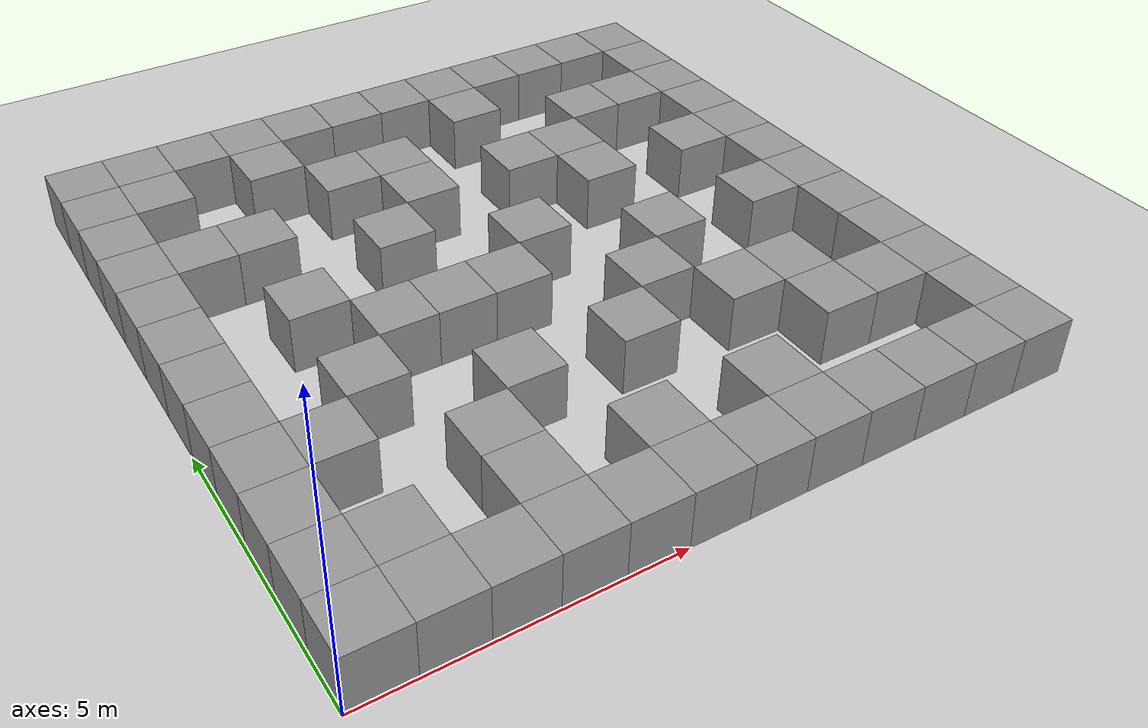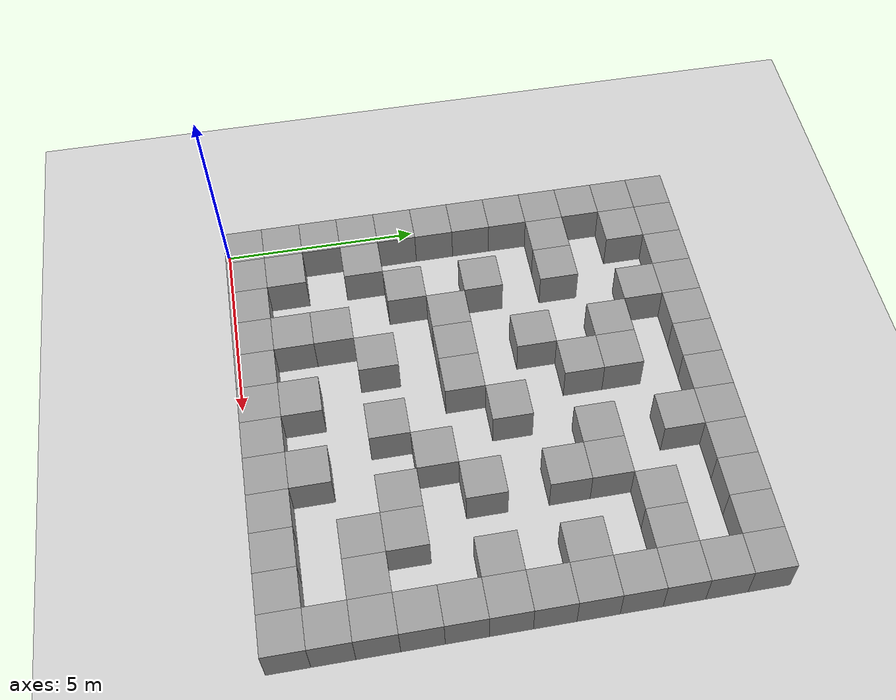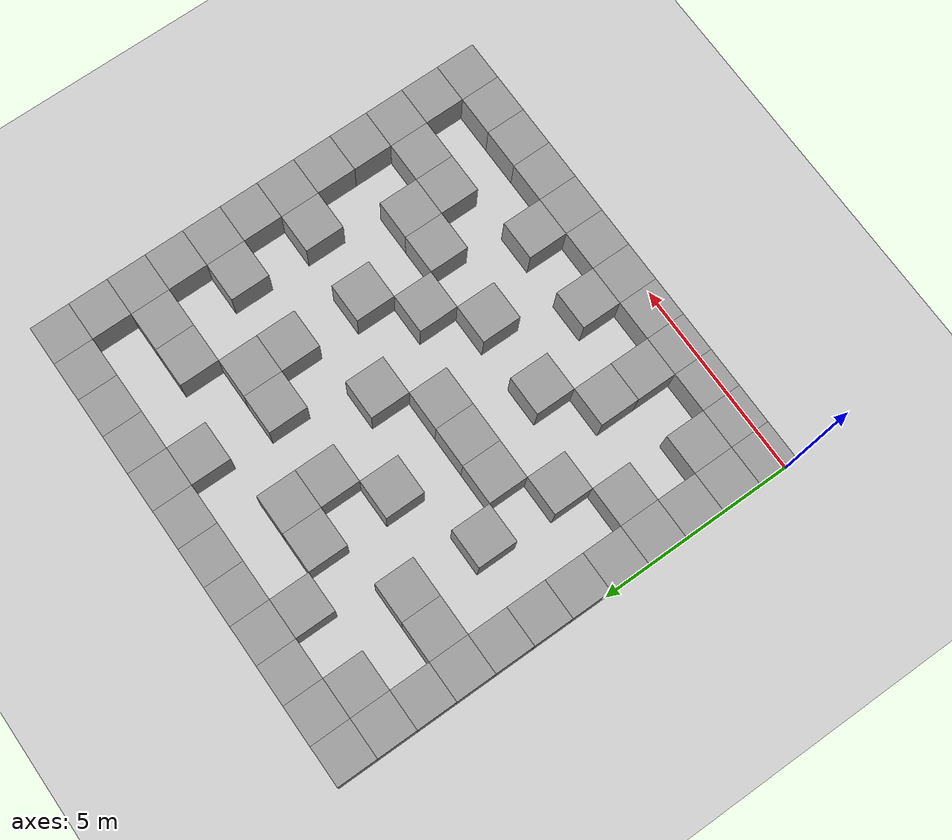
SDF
<sdf version="1.7">
 <world name="labyrinth">
  <light name="sun" type="directional">
   <pose>0 0 10 0 -0 0</pose>
   <diffuse>0.8 0.8 0.8 1</diffuse>
   <specular>0.2 0.2 0.2 1</specular>
   <attenuation>
    <range>1000</range>
    <constant>0.9</constant>
    <linear>0.01</linear>
    <quadratic>0.001</quadratic>
   </attenuation>
   <direction>-0.5 0.1 -0.9</direction>
   <spot><inner_angle>0</inner_angle><outer_angle>0</outer_angle><falloff>0</falloff></spot>
  </light>
  <model name="ground_plane">
   <static>1</static>
   <link name="link">
    <collision name="collision">
     <geometry><plane><normal>0 0 1</normal><size>200 200</size></plane></geometry>
     <surface>
      <contact><collide_bitmask>65535</collide_bitmask></contact>
      <friction><ode><mu>100</mu><mu2>50</mu2></ode></friction>
     </surface>
    </collision>
    <visual name="visual">
     <cast_shadows>0</cast_shadows>
     <geometry><plane><normal>0 0 1</normal><size>200 200</size></plane></geometry>
     <material>
      <script><uri>file://media/materials/scripts/gazebo.material</uri><name>Gazebo/Grey</name></script>
     </material>
    </visual>
   </link>
  </model>
  <gravity>0 0 -9.8</gravity>
  <magnetic_field>6e-06 2.3e-05 -4.2e-05</magnetic_field>
  <atmosphere type="adiabatic"/>
  <physics type="ode">
   <max_step_size>0.001</max_step_size>
   <real_time_factor>1</real_time_factor>
   <real_time_update_rate>1000</real_time_update_rate>
  </physics>
  <scene><ambient>0.4 0.4 0.4 1</ambient><background>0.7 0.7 0.7 1</background><shadows>1</shadows></scene>
  <spherical_coordinates>
   <surface_model>EARTH_WGS84</surface_model>
   <latitude_deg>0</latitude_deg>
   <longitude_deg>0</longitude_deg>
   <elevation>0</elevation>
   <heading_deg>0</heading_deg>
  </spherical_coordinates>
  <model name="unit_box_0">
   <static>1</static>
   <pose>0.5 0.5 0.5 0 -0 0</pose>
   <link name="link">
    <inertial>
     <mass>1</mass>
     <inertia>
      <ixx>0.166667</ixx>
      <ixy>0</ixy>
      <ixz>0</ixz>
      <iyy>0.166667</iyy>
      <iyz>0</iyz>
      <izz>0.166667</izz>
     </inertia>
    </inertial>
    <collision name="collision"><geometry><box><size>1 1 1</size></box></geometry></collision>
    <visual name="visual">
     <geometry><box><size>1 1 1</size></box></geometry>
     <material>
      <script><name>Gazebo/Grey</name><uri>file://media/materials/scripts/gazebo.material</uri></script>
     </material>
    </visual>
   </link>
  </model>
  <model name="unit_box_1">
   <static>1</static>
   <pose>1.5 0.5 0.5 0 -0 0</pose>
   <link name="link">
    <inertial>
     <mass>1</mass>
     <inertia>
      <ixx>0.166667</ixx>
      <ixy>0</ixy>
      <ixz>0</ixz>
      <iyy>0.166667</iyy>
      <iyz>0</iyz>
      <izz>0.166667</izz>
     </inertia>
    </inertial>
    <collision name="collision"><geometry><box><size>1 1 1</size></box></geometry></collision>
    <visual name="visual">
     <geometry><box><size>1 1 1</size></box></geometry>
     <material>
      <script><name>Gazebo/Grey</name><uri>file://media/materials/scripts/gazebo.material</uri></script>
     </material>
    </visual>
   </link>
  </model>
  <model name="unit_box_2">
   <static>1</static>
   <pose>2.5 0.5 0.5 0 -0 0</pose>
   <link name="link">
    <inertial>
     <mass>1</mass>
     <inertia>
      <ixx>0.166667</ixx>
      <ixy>0</ixy>
      <ixz>0</ixz>
      <iyy>0.166667</iyy>
      <iyz>0</iyz>
      <izz>0.166667</izz>
     </inertia>
    </inertial>
    <collision name="collision"><geometry><box><size>1 1 1</size></box></geometry></collision>
    <visual name="visual">
     <geometry><box><size>1 1 1</size></box></geometry>
     <material>
      <script><name>Gazebo/Grey</name><uri>file://media/materials/scripts/gazebo.material</uri></script>
     </material>
    </visual>
   </link>
  </model>
  <model name="unit_box_3">
   <static>1</static>
   <pose>3.5 0.5 0.5 0 -0 0</pose>
   <link name="link">
    <inertial>
     <mass>1</mass>
     <inertia>
      <ixx>0.166667</ixx>
      <ixy>0</ixy>
      <ixz>0</ixz>
      <iyy>0.166667</iyy>
      <iyz>0</iyz>
      <izz>0.166667</izz>
     </inertia>
    </inertial>
    <collision name="collision"><geometry><box><size>1 1 1</size></box></geometry></collision>
    <visual name="visual">
     <geometry><box><size>1 1 1</size></box></geometry>
     <material>
      <script><name>Gazebo/Grey</name><uri>file://media/materials/scripts/gazebo.material</uri></script>
     </material>
    </visual>
   </link>
  </model>
  <model name="unit_box_4">
   <static>1</static>
   <pose>4.5 0.5 0.5 0 -0 0</pose>
   <link name="link">
    <inertial>
     <mass>1</mass>
     <inertia>
      <ixx>0.166667</ixx>
      <ixy>0</ixy>
      <ixz>0</ixz>
      <iyy>0.166667</iyy>
      <iyz>0</iyz>
      <izz>0.166667</izz>
     </inertia>
    </inertial>
    <collision name="collision"><geometry><box><size>1 1 1</size></box></geometry></collision>
    <visual name="visual">
     <geometry><box><size>1 1 1</size></box></geometry>
     <material>
      <script><name>Gazebo/Grey</name><uri>file://media/materials/scripts/gazebo.material</uri></script>
     </material>
    </visual>
   </link>
  </model>
  <model name="unit_box_5">
   <static>1</static>
   <pose>5.5 0.5 0.5 0 -0 0</pose>
   <link name="link">
    <inertial>
     <mass>1</mass>
     <inertia>
      <ixx>0.166667</ixx>
      <ixy>0</ixy>
      <ixz>0</ixz>
      <iyy>0.166667</iyy>
      <iyz>0</iyz>
      <izz>0.166667</izz>
     </inertia>
    </inertial>
    <collision name="collision"><geometry><box><size>1 1 1</size></box></geometry></collision>
    <visual name="visual">
     <geometry><box><size>1 1 1</size></box></geometry>
     <material>
      <script><name>Gazebo/Grey</name><uri>file://media/materials/scripts/gazebo.material</uri></script>
     </material>
    </visual>
   </link>
  </model>
  <model name="unit_box_6">
   <static>1</static>
   <pose>6.5 0.5 0.5 0 -0 0</pose>
   <link name="link">
    <inertial>
     <mass>1</mass>
     <inertia>
      <ixx>0.166667</ixx>
      <ixy>0</ixy>
      <ixz>0</ixz>
      <iyy>0.166667</iyy>
      <iyz>0</iyz>
      <izz>0.166667</izz>
     </inertia>
    </inertial>
    <collision name="collision"><geometry><box><size>1 1 1</size></box></geometry></collision>
    <visual name="visual">
     <geometry><box><size>1 1 1</size></box></geometry>
     <material>
      <script><name>Gazebo/Grey</name><uri>file://media/materials/scripts/gazebo.material</uri></script>
     </material>
    </visual>
   </link>
  </model>
  <model name="unit_box_7">
   <static>1</static>
   <pose>7.5 0.5 0.5 0 -0 0</pose>
   <link name="link">
    <inertial>
     <mass>1</mass>
     <inertia>
      <ixx>0.166667</ixx>
      <ixy>0</ixy>
      <ixz>0</ixz>
      <iyy>0.166667</iyy>
      <iyz>0</iyz>
      <izz>0.166667</izz>
     </inertia>
    </inertial>
    <collision name="collision"><geometry><box><size>1 1 1</size></box></geometry></collision>
    <visual name="visual">
     <geometry><box><size>1 1 1</size></box></geometry>
     <material>
      <script><name>Gazebo/Grey</name><uri>file://media/materials/scripts/gazebo.material</uri></script>
     </material>
    </visual>
   </link>
  </model>
  <model name="unit_box_8">
   <static>1</static>
   <pose>8.5 0.5 0.5 0 -0 0</pose>
   <link name="link">
    <inertial>
     <mass>1</mass>
     <inertia>
      <ixx>0.166667</ixx>
      <ixy>0</ixy>
      <ixz>0</ixz>
      <iyy>0.166667</iyy>
      <iyz>0</iyz>
      <izz>0.166667</izz>
     </inertia>
    </inertial>
    <collision name="collision"><geometry><box><size>1 1 1</size></box></geometry></collision>
    <visual name="visual">
     <geometry><box><size>1 1 1</size></box></geometry>
     <material>
      <script><name>Gazebo/Grey</name><uri>file://media/materials/scripts/gazebo.material</uri></script>
     </material>
    </visual>
   </link>
  </model>
  <model name="unit_box_9">
   <static>1</static>
   <pose>9.5 0.5 0.5 0 -0 0</pose>
   <link name="link">
    <inertial>
     <mass>1</mass>
     <inertia>
      <ixx>0.166667</ixx>
      <ixy>0</ixy>
      <ixz>0</ixz>
      <iyy>0.166667</iyy>
      <iyz>0</iyz>
      <izz>0.166667</izz>
     </inertia>
    </inertial>
    <collision name="collision"><geometry><box><size>1 1 1</size></box></geometry></collision>
    <visual name="visual">
     <geometry><box><size>1 1 1</size></box></geometry>
     <material>
      <script><name>Gazebo/Grey</name><uri>file://media/materials/scripts/gazebo.material</uri></script>
     </material>
    </visual>
   </link>
  </model>
  <model name="unit_box_10">
   <static>1</static>
   <pose>10.5 0.5 0.5 0 -0 0</pose>
   <link name="link">
    <inertial>
     <mass>1</mass>
     <inertia>
      <ixx>0.166667</ixx>
      <ixy>0</ixy>
      <ixz>0</ixz>
      <iyy>0.166667</iyy>
      <iyz>0</iyz>
      <izz>0.166667</izz>
     </inertia>
    </inertial>
    <collision name="collision"><geometry><box><size>1 1 1</size></box></geometry></collision>
    <visual name="visual">
     <geometry><box><size>1 1 1</size></box></geometry>
     <material>
      <script><name>Gazebo/Grey</name><uri>file://media/materials/scripts/gazebo.material</uri></script>
     </material>
    </visual>
   </link>
  </model>
  <model name="unit_box_11">
   <static>1</static>
   <pose>11.5 0.5 0.5 0 -0 0</pose>
   <link name="link">
    <inertial>
     <mass>1</mass>
     <inertia>
      <ixx>0.166667</ixx>
      <ixy>0</ixy>
      <ixz>0</ixz>
      <iyy>0.166667</iyy>
      <iyz>0</iyz>
      <izz>0.166667</izz>
     </inertia>
    </inertial>
    <collision name="collision"><geometry><box><size>1 1 1</size></box></geometry></collision>
    <visual name="visual">
     <geometry><box><size>1 1 1</size></box></geometry>
     <material>
      <script><name>Gazebo/Grey</name><uri>file://media/materials/scripts/gazebo.material</uri></script>
     </material>
    </visual>
   </link>
  </model>
  <model name="unit_box_12">
   <static>1</static>
   <pose>0.5 1.5 0.5 0 -0 0</pose>
   <link name="link">
    <inertial>
     <mass>1</mass>
     <inertia>
      <ixx>0.166667</ixx>
      <ixy>0</ixy>
      <ixz>0</ixz>
      <iyy>0.166667</iyy>
      <iyz>0</iyz>
      <izz>0.166667</izz>
     </inertia>
    </inertial>
    <collision name="collision"><geometry><box><size>1 1 1</size></box></geometry></collision>
    <visual name="visual">
     <geometry><box><size>1 1 1</size></box></geometry>
     <material>
      <script><name>Gazebo/Grey</name><uri>file://media/materials/scripts/gazebo.material</uri></script>
     </material>
    </visual>
   </link>
  </model>
  <model name="unit_box_13">
   <static>1</static>
   <pose>1.5 1.5 0.5 0 -0 0</pose>
   <link name="link">
    <inertial>
     <mass>1</mass>
     <inertia>
      <ixx>0.166667</ixx>
      <ixy>0</ixy>
      <ixz>0</ixz>
      <iyy>0.166667</iyy>
      <iyz>0</iyz>
      <izz>0.166667</izz>
     </inertia>
    </inertial>
    <collision name="collision"><geometry><box><size>1 1 1</size></box></geometry></collision>
    <visual name="visual">
     <geometry><box><size>1 1 1</size></box></geometry>
     <material>
      <script><name>Gazebo/Grey</name><uri>file://media/materials/scripts/gazebo.material</uri></script>
     </material>
    </visual>
   </link>
  </model>
  <model name="unit_box_14">
   <static>1</static>
   <pose>3.5 1.5 0.5 0 -0 0</pose>
   <link name="link">
    <inertial>
     <mass>1</mass>
     <inertia>
      <ixx>0.166667</ixx>
      <ixy>0</ixy>
      <ixz>0</ixz>
      <iyy>0.166667</iyy>
      <iyz>0</iyz>
      <izz>0.166667</izz>
     </inertia>
    </inertial>
    <collision name="collision"><geometry><box><size>1 1 1</size></box></geometry></collision>
    <visual name="visual">
     <geometry><box><size>1 1 1</size></box></geometry>
     <material>
      <script><name>Gazebo/Grey</name><uri>file://media/materials/scripts/gazebo.material</uri></script>
     </material>
    </visual>
   </link>
  </model>
  <model name="unit_box_15">
   <static>1</static>
   <pose>5.5 1.5 0.5 0 -0 0</pose>
   <link name="link">
    <inertial>
     <mass>1</mass>
     <inertia>
      <ixx>0.166667</ixx>
      <ixy>0</ixy>
      <ixz>0</ixz>
      <iyy>0.166667</iyy>
      <iyz>0</iyz>
      <izz>0.166667</izz>
     </inertia>
    </inertial>
    <collision name="collision"><geometry><box><size>1 1 1</size></box></geometry></collision>
    <visual name="visual">
     <geometry><box><size>1 1 1</size></box></geometry>
     <material>
      <script><name>Gazebo/Grey</name><uri>file://media/materials/scripts/gazebo.material</uri></script>
     </material>
    </visual>
   </link>
  </model>
  <model name="unit_box_16">
   <static>1</static>
   <pose>7.5 1.5 0.5 0 -0 0</pose>
   <link name="link">
    <inertial>
     <mass>1</mass>
     <inertia>
      <ixx>0.166667</ixx>
      <ixy>0</ixy>
      <ixz>0</ixz>
      <iyy>0.166667</iyy>
      <iyz>0</iyz>
      <izz>0.166667</izz>
     </inertia>
    </inertial>
    <collision name="collision"><geometry><box><size>1 1 1</size></box></geometry></collision>
    <visual name="visual">
     <geometry><box><size>1 1 1</size></box></geometry>
     <material>
      <script><name>Gazebo/Grey</name><uri>file://media/materials/scripts/gazebo.material</uri></script>
     </material>
    </visual>
   </link>
  </model>
  <model name="unit_box_17">
   <static>1</static>
   <pose>11.5 1.5 0.5 0 -0 0</pose>
   <link name="link">
    <inertial>
     <mass>1</mass>
     <inertia>
      <ixx>0.166667</ixx>
      <ixy>0</ixy>
      <ixz>0</ixz>
      <iyy>0.166667</iyy>
      <iyz>0</iyz>
      <izz>0.166667</izz>
     </inertia>
    </inertial>
    <collision name="collision"><geometry><box><size>1 1 1</size></box></geometry></collision>
    <visual name="visual">
     <geometry><box><size>1 1 1</size></box></geometry>
     <material>
      <script><name>Gazebo/Grey</name><uri>file://media/materials/scripts/gazebo.material</uri></script>
     </material>
    </visual>
   </link>
  </model>
  <model name="unit_box_18">
   <static>1</static>
   <pose>0.5 2.5 0.5 0 -0 0</pose>
   <link name="link">
    <inertial>
     <mass>1</mass>
     <inertia>
      <ixx>0.166667</ixx>
      <ixy>0</ixy>
      <ixz>0</ixz>
      <iyy>0.166667</iyy>
      <iyz>0</iyz>
      <izz>0.166667</izz>
     </inertia>
    </inertial>
    <collision name="collision"><geometry><box><size>1 1 1</size></box></geometry></collision>
    <visual name="visual">
     <geometry><box><size>1 1 1</size></box></geometry>
     <material>
      <script><name>Gazebo/Grey</name><uri>file://media/materials/scripts/gazebo.material</uri></script>
     </material>
    </visual>
   </link>
  </model>
  <model name="unit_box_19">
   <static>1</static>
   <pose>3.5 2.5 0.5 0 -0 0</pose>
   <link name="link">
    <inertial>
     <mass>1</mass>
     <inertia>
      <ixx>0.166667</ixx>
      <ixy>0</ixy>
      <ixz>0</ixz>
      <iyy>0.166667</iyy>
      <iyz>0</iyz>
      <izz>0.166667</izz>
     </inertia>
    </inertial>
    <collision name="collision"><geometry><box><size>1 1 1</size></box></geometry></collision>
    <visual name="visual">
     <geometry><box><size>1 1 1</size></box></geometry>
     <material>
      <script><name>Gazebo/Grey</name><uri>file://media/materials/scripts/gazebo.material</uri></script>
     </material>
    </visual>
   </link>
  </model>
  <model name="unit_box_20">
   <static>1</static>
   <pose>9.5 2.5 0.5 0 -0 0</pose>
   <link name="link">
    <inertial>
     <mass>1</mass>
     <inertia>
      <ixx>0.166667</ixx>
      <ixy>0</ixy>
      <ixz>0</ixz>
      <iyy>0.166667</iyy>
      <iyz>0</iyz>
      <izz>0.166667</izz>
     </inertia>
    </inertial>
    <collision name="collision"><geometry><box><size>1 1 1</size></box></geometry></collision>
    <visual name="visual">
     <geometry><box><size>1 1 1</size></box></geometry>
     <material>
      <script><name>Gazebo/Grey</name><uri>file://media/materials/scripts/gazebo.material</uri></script>
     </material>
    </visual>
   </link>
  </model>
  <model name="unit_box_21">
   <static>1</static>
   <pose>10.5 2.5 0.5 0 -0 0</pose>
   <link name="link">
    <inertial>
     <mass>1</mass>
     <inertia>
      <ixx>0.166667</ixx>
      <ixy>0</ixy>
      <ixz>0</ixz>
      <iyy>0.166667</iyy>
      <iyz>0</iyz>
      <izz>0.166667</izz>
     </inertia>
    </inertial>
    <collision name="collision"><geometry><box><size>1 1 1</size></box></geometry></collision>
    <visual name="visual">
     <geometry><box><size>1 1 1</size></box></geometry>
     <material>
      <script><name>Gazebo/Grey</name><uri>file://media/materials/scripts/gazebo.material</uri></script>
     </material>
    </visual>
   </link>
  </model>
  <model name="unit_box_22">
   <static>1</static>
   <pose>11.5 2.5 0.5 0 -0 0</pose>
   <link name="link">
    <inertial>
     <mass>1</mass>
     <inertia>
      <ixx>0.166667</ixx>
      <ixy>0</ixy>
      <ixz>0</ixz>
      <iyy>0.166667</iyy>
      <iyz>0</iyz>
      <izz>0.166667</izz>
     </inertia>
    </inertial>
    <collision name="collision"><geometry><box><size>1 1 1</size></box></geometry></collision>
    <visual name="visual">
     <geometry><box><size>1 1 1</size></box></geometry>
     <material>
      <script><name>Gazebo/Grey</name><uri>file://media/materials/scripts/gazebo.material</uri></script>
     </material>
    </visual>
   </link>
  </model>
  <model name="unit_box_23">
   <static>1</static>
   <pose>0.5 3.5 0.5 0 -0 0</pose>
   <link name="link">
    <inertial>
     <mass>1</mass>
     <inertia>
      <ixx>0.166667</ixx>
      <ixy>0</ixy>
      <ixz>0</ixz>
      <iyy>0.166667</iyy>
      <iyz>0</iyz>
      <izz>0.166667</izz>
     </inertia>
    </inertial>
    <collision name="collision"><geometry><box><size>1 1 1</size></box></geometry></collision>
    <visual name="visual">
     <geometry><box><size>1 1 1</size></box></geometry>
     <material>
      <script><name>Gazebo/Grey</name><uri>file://media/materials/scripts/gazebo.material</uri></script>
     </material>
    </visual>
   </link>
  </model>
  <model name="unit_box_24">
   <static>1</static>
   <pose>1.5 3.5 0.5 0 -0 0</pose>
   <link name="link">
    <inertial>
     <mass>1</mass>
     <inertia>
      <ixx>0.166667</ixx>
      <ixy>0</ixy>
      <ixz>0</ixz>
      <iyy>0.166667</iyy>
      <iyz>0</iyz>
      <izz>0.166667</izz>
     </inertia>
    </inertial>
    <collision name="collision"><geometry><box><size>1 1 1</size></box></geometry></collision>
    <visual name="visual">
     <geometry><box><size>1 1 1</size></box></geometry>
     <material>
      <script><name>Gazebo/Grey</name><uri>file://media/materials/scripts/gazebo.material</uri></script>
     </material>
    </visual>
   </link>
  </model>
  <model name="unit_box_25">
   <static>1</static>
   <pose>4.5 3.5 0.5 0 -0 0</pose>
   <link name="link">
    <inertial>
     <mass>1</mass>
     <inertia>
      <ixx>0.166667</ixx>
      <ixy>0</ixy>
      <ixz>0</ixz>
      <iyy>0.166667</iyy>
      <iyz>0</iyz>
      <izz>0.166667</izz>
     </inertia>
    </inertial>
    <collision name="collision"><geometry><box><size>1 1 1</size></box></geometry></collision>
    <visual name="visual">
     <geometry><box><size>1 1 1</size></box></geometry>
     <material>
      <script><name>Gazebo/Grey</name><uri>file://media/materials/scripts/gazebo.material</uri></script>
     </material>
    </visual>
   </link>
  </model>
  <model name="unit_box_26">
   <static>1</static>
   <pose>6.5 3.5 0.5 0 -0 0</pose>
   <link name="link">
    <inertial>
     <mass>1</mass>
     <inertia>
      <ixx>0.166667</ixx>
      <ixy>0</ixy>
      <ixz>0</ixz>
      <iyy>0.166667</iyy>
      <iyz>0</iyz>
      <izz>0.166667</izz>
     </inertia>
    </inertial>
    <collision name="collision"><geometry><box><size>1 1 1</size></box></geometry></collision>
    <visual name="visual">
     <geometry><box><size>1 1 1</size></box></geometry>
     <material>
      <script><name>Gazebo/Grey</name><uri>file://media/materials/scripts/gazebo.material</uri></script>
     </material>
    </visual>
   </link>
  </model>
  <model name="unit_box_27">
   <static>1</static>
   <pose>8.5 3.5 0.5 0 -0 0</pose>
   <link name="link">
    <inertial>
     <mass>1</mass>
     <inertia>
      <ixx>0.166667</ixx>
      <ixy>0</ixy>
      <ixz>0</ixz>
      <iyy>0.166667</iyy>
      <iyz>0</iyz>
      <izz>0.166667</izz>
     </inertia>
    </inertial>
    <collision name="collision"><geometry><box><size>1 1 1</size></box></geometry></collision>
    <visual name="visual">
     <geometry><box><size>1 1 1</size></box></geometry>
     <material>
      <script><name>Gazebo/Grey</name><uri>file://media/materials/scripts/gazebo.material</uri></script>
     </material>
    </visual>
   </link>
  </model>
  <model name="unit_box_28">
   <static>1</static>
   <pose>9.5 3.5 0.5 0 -0 0</pose>
   <link name="link">
    <inertial>
     <mass>1</mass>
     <inertia>
      <ixx>0.166667</ixx>
      <ixy>0</ixy>
      <ixz>0</ixz>
      <iyy>0.166667</iyy>
      <iyz>0</iyz>
      <izz>0.166667</izz>
     </inertia>
    </inertial>
    <collision name="collision"><geometry><box><size>1 1 1</size></box></geometry></collision>
    <visual name="visual">
     <geometry><box><size>1 1 1</size></box></geometry>
     <material>
      <script><name>Gazebo/Grey</name><uri>file://media/materials/scripts/gazebo.material</uri></script>
     </material>
    </visual>
   </link>
  </model>
  <model name="unit_box_29">
   <static>1</static>
   <pose>11.5 3.5 0.5 0 -0 0</pose>
   <link name="link">
    <inertial>
     <mass>1</mass>
     <inertia>
      <ixx>0.166667</ixx>
      <ixy>0</ixy>
      <ixz>0</ixz>
      <iyy>0.166667</iyy>
      <iyz>0</iyz>
      <izz>0.166667</izz>
     </inertia>
    </inertial>
    <collision name="collision"><geometry><box><size>1 1 1</size></box></geometry></collision>
    <visual name="visual">
     <geometry><box><size>1 1 1</size></box></geometry>
     <material>
      <script><name>Gazebo/Grey</name><uri>file://media/materials/scripts/gazebo.material</uri></script>
     </material>
    </visual>
   </link>
  </model>
  <model name="unit_box_30">
   <static>1</static>
   <pose>0.5 4.5 0.5 0 -0 0</pose>
   <link name="link">
    <inertial>
     <mass>1</mass>
     <inertia>
      <ixx>0.166667</ixx>
      <ixy>0</ixy>
      <ixz>0</ixz>
      <iyy>0.166667</iyy>
      <iyz>0</iyz>
      <izz>0.166667</izz>
     </inertia>
    </inertial>
    <collision name="collision"><geometry><box><size>1 1 1</size></box></geometry></collision>
    <visual name="visual">
     <geometry><box><size>1 1 1</size></box></geometry>
     <material>
      <script><name>Gazebo/Grey</name><uri>file://media/materials/scripts/gazebo.material</uri></script>
     </material>
    </visual>
   </link>
  </model>
  <model name="unit_box_31">
   <static>1</static>
   <pose>2.5 4.5 0.5 0 -0 0</pose>
   <link name="link">
    <inertial>
     <mass>1</mass>
     <inertia>
      <ixx>0.166667</ixx>
      <ixy>0</ixy>
      <ixz>0</ixz>
      <iyy>0.166667</iyy>
      <iyz>0</iyz>
      <izz>0.166667</izz>
     </inertia>
    </inertial>
    <collision name="collision"><geometry><box><size>1 1 1</size></box></geometry></collision>
    <visual name="visual">
     <geometry><box><size>1 1 1</size></box></geometry>
     <material>
      <script><name>Gazebo/Grey</name><uri>file://media/materials/scripts/gazebo.material</uri></script>
     </material>
    </visual>
   </link>
  </model>
  <model name="unit_box_32">
   <static>1</static>
   <pose>7.5 4.5 0.5 0 -0 0</pose>
   <link name="link">
    <inertial>
     <mass>1</mass>
     <inertia>
      <ixx>0.166667</ixx>
      <ixy>0</ixy>
      <ixz>0</ixz>
      <iyy>0.166667</iyy>
      <iyz>0</iyz>
      <izz>0.166667</izz>
     </inertia>
    </inertial>
    <collision name="collision"><geometry><box><size>1 1 1</size></box></geometry></collision>
    <visual name="visual">
     <geometry><box><size>1 1 1</size></box></geometry>
     <material>
      <script><name>Gazebo/Grey</name><uri>file://media/materials/scripts/gazebo.material</uri></script>
     </material>
    </visual>
   </link>
  </model>
  <model name="unit_box_33">
   <static>1</static>
   <pose>11.5 4.5 0.5 0 -0 0</pose>
   <link name="link">
    <inertial>
     <mass>1</mass>
     <inertia>
      <ixx>0.166667</ixx>
      <ixy>0</ixy>
      <ixz>0</ixz>
      <iyy>0.166667</iyy>
      <iyz>0</iyz>
      <izz>0.166667</izz>
     </inertia>
    </inertial>
    <collision name="collision"><geometry><box><size>1 1 1</size></box></geometry></collision>
    <visual name="visual">
     <geometry><box><size>1 1 1</size></box></geometry>
     <material>
      <script><name>Gazebo/Grey</name><uri>file://media/materials/scripts/gazebo.material</uri></script>
     </material>
    </visual>
   </link>
  </model>
  <model name="unit_box_34">
   <static>1</static>
   <pose>0.5 5.5 0.5 0 -0 0</pose>
   <link name="link">
    <inertial>
     <mass>1</mass>
     <inertia>
      <ixx>0.166667</ixx>
      <ixy>0</ixy>
      <ixz>0</ixz>
      <iyy>0.166667</iyy>
      <iyz>0</iyz>
      <izz>0.166667</izz>
     </inertia>
    </inertial>
    <collision name="collision"><geometry><box><size>1 1 1</size></box></geometry></collision>
    <visual name="visual">
     <geometry><box><size>1 1 1</size></box></geometry>
     <material>
      <script><name>Gazebo/Grey</name><uri>file://media/materials/scripts/gazebo.material</uri></script>
     </material>
    </visual>
   </link>
  </model>
  <model name="unit_box_35">
   <static>1</static>
   <pose>3.5 5.5 0.5 0 -0 0</pose>
   <link name="link">
    <inertial>
     <mass>1</mass>
     <inertia>
      <ixx>0.166667</ixx>
      <ixy>0</ixy>
      <ixz>0</ixz>
      <iyy>0.166667</iyy>
      <iyz>0</iyz>
      <izz>0.166667</izz>
     </inertia>
    </inertial>
    <collision name="collision"><geometry><box><size>1 1 1</size></box></geometry></collision>
    <visual name="visual">
     <geometry><box><size>1 1 1</size></box></geometry>
     <material>
      <script><name>Gazebo/Grey</name><uri>file://media/materials/scripts/gazebo.material</uri></script>
     </material>
    </visual>
   </link>
  </model>
  <model name="unit_box_36">
   <static>1</static>
   <pose>4.5 5.5 0.5 0 -0 0</pose>
   <link name="link">
    <inertial>
     <mass>1</mass>
     <inertia>
      <ixx>0.166667</ixx>
      <ixy>0</ixy>
      <ixz>0</ixz>
      <iyy>0.166667</iyy>
      <iyz>0</iyz>
      <izz>0.166667</izz>
     </inertia>
    </inertial>
    <collision name="collision"><geometry><box><size>1 1 1</size></box></geometry></collision>
    <visual name="visual">
     <geometry><box><size>1 1 1</size></box></geometry>
     <material>
      <script><name>Gazebo/Grey</name><uri>file://media/materials/scripts/gazebo.material</uri></script>
     </material>
    </visual>
   </link>
  </model>
  <model name="unit_box_37">
   <static>1</static>
   <pose>5.5 5.5 0.5 0 -0 0</pose>
   <link name="link">
    <inertial>
     <mass>1</mass>
     <inertia>
      <ixx>0.166667</ixx>
      <ixy>0</ixy>
      <ixz>0</ixz>
      <iyy>0.166667</iyy>
      <iyz>0</iyz>
      <izz>0.166667</izz>
     </inertia>
    </inertial>
    <collision name="collision"><geometry><box><size>1 1 1</size></box></geometry></collision>
    <visual name="visual">
     <geometry><box><size>1 1 1</size></box></geometry>
     <material>
      <script><name>Gazebo/Grey</name><uri>file://media/materials/scripts/gazebo.material</uri></script>
     </material>
    </visual>
   </link>
  </model>
  <model name="unit_box_38">
   <static>1</static>
   <pose>8.5 5.5 0.5 0 -0 0</pose>
   <link name="link">
    <inertial>
     <mass>1</mass>
     <inertia>
      <ixx>0.166667</ixx>
      <ixy>0</ixy>
      <ixz>0</ixz>
      <iyy>0.166667</iyy>
      <iyz>0</iyz>
      <izz>0.166667</izz>
     </inertia>
    </inertial>
    <collision name="collision"><geometry><box><size>1 1 1</size></box></geometry></collision>
    <visual name="visual">
     <geometry><box><size>1 1 1</size></box></geometry>
     <material>
      <script><name>Gazebo/Grey</name><uri>file://media/materials/scripts/gazebo.material</uri></script>
     </material>
    </visual>
   </link>
  </model>
  <model name="unit_box_39">
   <static>1</static>
   <pose>10.5 5.5 0.5 0 -0 0</pose>
   <link name="link">
    <inertial>
     <mass>1</mass>
     <inertia>
      <ixx>0.166667</ixx>
      <ixy>0</ixy>
      <ixz>0</ixz>
      <iyy>0.166667</iyy>
      <iyz>0</iyz>
      <izz>0.166667</izz>
     </inertia>
    </inertial>
    <collision name="collision"><geometry><box><size>1 1 1</size></box></geometry></collision>
    <visual name="visual">
     <geometry><box><size>1 1 1</size></box></geometry>
     <material>
      <script><name>Gazebo/Grey</name><uri>file://media/materials/scripts/gazebo.material</uri></script>
     </material>
    </visual>
   </link>
  </model>
  <model name="unit_box_40">
   <static>1</static>
   <pose>11.5 5.5 0.5 0 -0 0</pose>
   <link name="link">
    <inertial>
     <mass>1</mass>
     <inertia>
      <ixx>0.166667</ixx>
      <ixy>0</ixy>
      <ixz>0</ixz>
      <iyy>0.166667</iyy>
      <iyz>0</iyz>
      <izz>0.166667</izz>
     </inertia>
    </inertial>
    <collision name="collision"><geometry><box><size>1 1 1</size></box></geometry></collision>
    <visual name="visual">
     <geometry><box><size>1 1 1</size></box></geometry>
     <material>
      <script><name>Gazebo/Grey</name><uri>file://media/materials/scripts/gazebo.material</uri></script>
     </material>
    </visual>
   </link>
  </model>
  <model name="unit_box_41">
   <static>1</static>
   <pose>0.5 6.5 0.5 0 -0 0</pose>
   <link name="link">
    <inertial>
     <mass>1</mass>
     <inertia>
      <ixx>0.166667</ixx>
      <ixy>0</ixy>
      <ixz>0</ixz>
      <iyy>0.166667</iyy>
      <iyz>0</iyz>
      <izz>0.166667</izz>
     </inertia>
    </inertial>
    <collision name="collision"><geometry><box><size>1 1 1</size></box></geometry></collision>
    <visual name="visual">
     <geometry><box><size>1 1 1</size></box></geometry>
     <material>
      <script><name>Gazebo/Grey</name><uri>file://media/materials/scripts/gazebo.material</uri></script>
     </material>
    </visual>
   </link>
  </model>
  <model name="unit_box_42">
   <static>1</static>
   <pose>2.5 6.5 0.5 0 -0 0</pose>
   <link name="link">
    <inertial>
     <mass>1</mass>
     <inertia>
      <ixx>0.166667</ixx>
      <ixy>0</ixy>
      <ixz>0</ixz>
      <iyy>0.166667</iyy>
      <iyz>0</iyz>
      <izz>0.166667</izz>
     </inertia>
    </inertial>
    <collision name="collision"><geometry><box><size>1 1 1</size></box></geometry></collision>
    <visual name="visual">
     <geometry><box><size>1 1 1</size></box></geometry>
     <material>
      <script><name>Gazebo/Grey</name><uri>file://media/materials/scripts/gazebo.material</uri></script>
     </material>
    </visual>
   </link>
  </model>
  <model name="unit_box_43">
   <static>1</static>
   <pose>6.5 6.5 0.5 0 -0 0</pose>
   <link name="link">
    <inertial>
     <mass>1</mass>
     <inertia>
      <ixx>0.166667</ixx>
      <ixy>0</ixy>
      <ixz>0</ixz>
      <iyy>0.166667</iyy>
      <iyz>0</iyz>
      <izz>0.166667</izz>
     </inertia>
    </inertial>
    <collision name="collision"><geometry><box><size>1 1 1</size></box></geometry></collision>
    <visual name="visual">
     <geometry><box><size>1 1 1</size></box></geometry>
     <material>
      <script><name>Gazebo/Grey</name><uri>file://media/materials/scripts/gazebo.material</uri></script>
     </material>
    </visual>
   </link>
  </model>
  <model name="unit_box_44">
   <static>1</static>
   <pose>11.5 6.5 0.5 0 -0 0</pose>
   <link name="link">
    <inertial>
     <mass>1</mass>
     <inertia>
      <ixx>0.166667</ixx>
      <ixy>0</ixy>
      <ixz>0</ixz>
      <iyy>0.166667</iyy>
      <iyz>0</iyz>
      <izz>0.166667</izz>
     </inertia>
    </inertial>
    <collision name="collision"><geometry><box><size>1 1 1</size></box></geometry></collision>
    <visual name="visual">
     <geometry><box><size>1 1 1</size></box></geometry>
     <material>
      <script><name>Gazebo/Grey</name><uri>file://media/materials/scripts/gazebo.material</uri></script>
     </material>
    </visual>
   </link>
  </model>
  <model name="unit_box_45">
   <static>1</static>
   <pose>0.5 7.5 0.5 0 -0 0</pose>
   <link name="link">
    <inertial>
     <mass>1</mass>
     <inertia>
      <ixx>0.166667</ixx>
      <ixy>0</ixy>
      <ixz>0</ixz>
      <iyy>0.166667</iyy>
      <iyz>0</iyz>
      <izz>0.166667</izz>
     </inertia>
    </inertial>
    <collision name="collision"><geometry><box><size>1 1 1</size></box></geometry></collision>
    <visual name="visual">
     <geometry><box><size>1 1 1</size></box></geometry>
     <material>
      <script><name>Gazebo/Grey</name><uri>file://media/materials/scripts/gazebo.material</uri></script>
     </material>
    </visual>
   </link>
  </model>
  <model name="unit_box_46">
   <static>1</static>
   <pose>4.5 7.5 0.5 0 -0 0</pose>
   <link name="link">
    <inertial>
     <mass>1</mass>
     <inertia>
      <ixx>0.166667</ixx>
      <ixy>0</ixy>
      <ixz>0</ixz>
      <iyy>0.166667</iyy>
      <iyz>0</iyz>
      <izz>0.166667</izz>
     </inertia>
    </inertial>
    <collision name="collision"><geometry><box><size>1 1 1</size></box></geometry></collision>
    <visual name="visual">
     <geometry><box><size>1 1 1</size></box></geometry>
     <material>
      <script><name>Gazebo/Grey</name><uri>file://media/materials/scripts/gazebo.material</uri></script>
     </material>
    </visual>
   </link>
  </model>
  <model name="unit_box_47">
   <static>1</static>
   <pose>8.5 7.5 0.5 0 -0 0</pose>
   <link name="link">
    <inertial>
     <mass>1</mass>
     <inertia>
      <ixx>0.166667</ixx>
      <ixy>0</ixy>
      <ixz>0</ixz>
      <iyy>0.166667</iyy>
      <iyz>0</iyz>
      <izz>0.166667</izz>
     </inertia>
    </inertial>
    <collision name="collision"><geometry><box><size>1 1 1</size></box></geometry></collision>
    <visual name="visual">
     <geometry><box><size>1 1 1</size></box></geometry>
     <material>
      <script><name>Gazebo/Grey</name><uri>file://media/materials/scripts/gazebo.material</uri></script>
     </material>
    </visual>
   </link>
  </model>
  <model name="unit_box_48">
   <static>1</static>
   <pose>10.5 7.5 0.5 0 -0 0</pose>
   <link name="link">
    <inertial>
     <mass>1</mass>
     <inertia>
      <ixx>0.166667</ixx>
      <ixy>0</ixy>
      <ixz>0</ixz>
      <iyy>0.166667</iyy>
      <iyz>0</iyz>
      <izz>0.166667</izz>
     </inertia>
    </inertial>
    <collision name="collision"><geometry><box><size>1 1 1</size></box></geometry></collision>
    <visual name="visual">
     <geometry><box><size>1 1 1</size></box></geometry>
     <material>
      <script><name>Gazebo/Grey</name><uri>file://media/materials/scripts/gazebo.material</uri></script>
     </material>
    </visual>
   </link>
  </model>
  <model name="unit_box_49">
   <static>1</static>
   <pose>11.5 7.5 0.5 0 -0 0</pose>
   <link name="link">
    <inertial>
     <mass>1</mass>
     <inertia>
      <ixx>0.166667</ixx>
      <ixy>0</ixy>
      <ixz>0</ixz>
      <iyy>0.166667</iyy>
      <iyz>0</iyz>
      <izz>0.166667</izz>
     </inertia>
    </inertial>
    <collision name="collision"><geometry><box><size>1 1 1</size></box></geometry></collision>
    <visual name="visual">
     <geometry><box><size>1 1 1</size></box></geometry>
     <material>
      <script><name>Gazebo/Grey</name><uri>file://media/materials/scripts/gazebo.material</uri></script>
     </material>
    </visual>
   </link>
  </model>
  <model name="unit_box_50">
   <static>1</static>
   <pose>0.5 8.5 0.5 0 -0 0</pose>
   <link name="link">
    <inertial>
     <mass>1</mass>
     <inertia>
      <ixx>0.166667</ixx>
      <ixy>0</ixy>
      <ixz>0</ixz>
      <iyy>0.166667</iyy>
      <iyz>0</iyz>
      <izz>0.166667</izz>
     </inertia>
    </inertial>
    <collision name="collision"><geometry><box><size>1 1 1</size></box></geometry></collision>
    <visual name="visual">
     <geometry><box><size>1 1 1</size></box></geometry>
     <material>
      <script><name>Gazebo/Grey</name><uri>file://media/materials/scripts/gazebo.material</uri></script>
     </material>
    </visual>
   </link>
  </model>
  <model name="unit_box_51">
   <static>1</static>
   <pose>1.5 8.5 0.5 0 -0 0</pose>
   <link name="link">
    <inertial>
     <mass>1</mass>
     <inertia>
      <ixx>0.166667</ixx>
      <ixy>0</ixy>
      <ixz>0</ixz>
      <iyy>0.166667</iyy>
      <iyz>0</iyz>
      <izz>0.166667</izz>
     </inertia>
    </inertial>
    <collision name="collision"><geometry><box><size>1 1 1</size></box></geometry></collision>
    <visual name="visual">
     <geometry><box><size>1 1 1</size></box></geometry>
     <material>
      <script><name>Gazebo/Grey</name><uri>file://media/materials/scripts/gazebo.material</uri></script>
     </material>
    </visual>
   </link>
  </model>
  <model name="unit_box_52">
   <static>1</static>
   <pose>2.5 8.5 0.5 0 -0 0</pose>
   <link name="link">
    <inertial>
     <mass>1</mass>
     <inertia>
      <ixx>0.166667</ixx>
      <ixy>0</ixy>
      <ixz>0</ixz>
      <iyy>0.166667</iyy>
      <iyz>0</iyz>
      <izz>0.166667</izz>
     </inertia>
    </inertial>
    <collision name="collision"><geometry><box><size>1 1 1</size></box></geometry></collision>
    <visual name="visual">
     <geometry><box><size>1 1 1</size></box></geometry>
     <material>
      <script><name>Gazebo/Grey</name><uri>file://media/materials/scripts/gazebo.material</uri></script>
     </material>
    </visual>
   </link>
  </model>
  <model name="unit_box_53">
   <static>1</static>
   <pose>5.5 8.5 0.5 0 -0 0</pose>
   <link name="link">
    <inertial>
     <mass>1</mass>
     <inertia>
      <ixx>0.166667</ixx>
      <ixy>0</ixy>
      <ixz>0</ixz>
      <iyy>0.166667</iyy>
      <iyz>0</iyz>
      <izz>0.166667</izz>
     </inertia>
    </inertial>
    <collision name="collision"><geometry><box><size>1 1 1</size></box></geometry></collision>
    <visual name="visual">
     <geometry><box><size>1 1 1</size></box></geometry>
     <material>
      <script><name>Gazebo/Grey</name><uri>file://media/materials/scripts/gazebo.material</uri></script>
     </material>
    </visual>
   </link>
  </model>
  <model name="unit_box_54">
   <static>1</static>
   <pose>7.5 8.5 0.5 0 -0 0</pose>
   <link name="link">
    <inertial>
     <mass>1</mass>
     <inertia>
      <ixx>0.166667</ixx>
      <ixy>0</ixy>
      <ixz>0</ixz>
      <iyy>0.166667</iyy>
      <iyz>0</iyz>
      <izz>0.166667</izz>
     </inertia>
    </inertial>
    <collision name="collision"><geometry><box><size>1 1 1</size></box></geometry></collision>
    <visual name="visual">
     <geometry><box><size>1 1 1</size></box></geometry>
     <material>
      <script><name>Gazebo/Grey</name><uri>file://media/materials/scripts/gazebo.material</uri></script>
     </material>
    </visual>
   </link>
  </model>
  <model name="unit_box_55">
   <static>1</static>
   <pose>8.5 8.5 0.5 0 -0 0</pose>
   <link name="link">
    <inertial>
     <mass>1</mass>
     <inertia>
      <ixx>0.166667</ixx>
      <ixy>0</ixy>
      <ixz>0</ixz>
      <iyy>0.166667</iyy>
      <iyz>0</iyz>
      <izz>0.166667</izz>
     </inertia>
    </inertial>
    <collision name="collision"><geometry><box><size>1 1 1</size></box></geometry></collision>
    <visual name="visual">
     <geometry><box><size>1 1 1</size></box></geometry>
     <material>
      <script><name>Gazebo/Grey</name><uri>file://media/materials/scripts/gazebo.material</uri></script>
     </material>
    </visual>
   </link>
  </model>
  <model name="unit_box_56">
   <static>1</static>
   <pose>11.5 8.5 0.5 0 -0 0</pose>
   <link name="link">
    <inertial>
     <mass>1</mass>
     <inertia>
      <ixx>0.166667</ixx>
      <ixy>0</ixy>
      <ixz>0</ixz>
      <iyy>0.166667</iyy>
      <iyz>0</iyz>
      <izz>0.166667</izz>
     </inertia>
    </inertial>
    <collision name="collision"><geometry><box><size>1 1 1</size></box></geometry></collision>
    <visual name="visual">
     <geometry><box><size>1 1 1</size></box></geometry>
     <material>
      <script><name>Gazebo/Grey</name><uri>file://media/materials/scripts/gazebo.material</uri></script>
     </material>
    </visual>
   </link>
  </model>
  <model name="unit_box_57">
   <static>1</static>
   <pose>0.5 9.5 0.5 0 -0 0</pose>
   <link name="link">
    <inertial>
     <mass>1</mass>
     <inertia>
      <ixx>0.166667</ixx>
      <ixy>0</ixy>
      <ixz>0</ixz>
      <iyy>0.166667</iyy>
      <iyz>0</iyz>
      <izz>0.166667</izz>
     </inertia>
    </inertial>
    <collision name="collision"><geometry><box><size>1 1 1</size></box></geometry></collision>
    <visual name="visual">
     <geometry><box><size>1 1 1</size></box></geometry>
     <material>
      <script><name>Gazebo/Grey</name><uri>file://media/materials/scripts/gazebo.material</uri></script>
     </material>
    </visual>
   </link>
  </model>
  <model name="unit_box_58">
   <static>1</static>
   <pose>4.5 9.5 0.5 0 -0 0</pose>
   <link name="link">
    <inertial>
     <mass>1</mass>
     <inertia>
      <ixx>0.166667</ixx>
      <ixy>0</ixy>
      <ixz>0</ixz>
      <iyy>0.166667</iyy>
      <iyz>0</iyz>
      <izz>0.166667</izz>
     </inertia>
    </inertial>
    <collision name="collision"><geometry><box><size>1 1 1</size></box></geometry></collision>
    <visual name="visual">
     <geometry><box><size>1 1 1</size></box></geometry>
     <material>
      <script><name>Gazebo/Grey</name><uri>file://media/materials/scripts/gazebo.material</uri></script>
     </material>
    </visual>
   </link>
  </model>
  <model name="unit_box_59">
   <static>1</static>
   <pose>5.5 9.5 0.5 0 -0 0</pose>
   <link name="link">
    <inertial>
     <mass>1</mass>
     <inertia>
      <ixx>0.166667</ixx>
      <ixy>0</ixy>
      <ixz>0</ixz>
      <iyy>0.166667</iyy>
      <iyz>0</iyz>
      <izz>0.166667</izz>
     </inertia>
    </inertial>
    <collision name="collision"><geometry><box><size>1 1 1</size></box></geometry></collision>
    <visual name="visual">
     <geometry><box><size>1 1 1</size></box></geometry>
     <material>
      <script><name>Gazebo/Grey</name><uri>file://media/materials/scripts/gazebo.material</uri></script>
     </material>
    </visual>
   </link>
  </model>
  <model name="unit_box_60">
   <static>1</static>
   <pose>9.5 9.5 0.5 0 -0 0</pose>
   <link name="link">
    <inertial>
     <mass>1</mass>
     <inertia>
      <ixx>0.166667</ixx>
      <ixy>0</ixy>
      <ixz>0</ixz>
      <iyy>0.166667</iyy>
      <iyz>0</iyz>
      <izz>0.166667</izz>
     </inertia>
    </inertial>
    <collision name="collision"><geometry><box><size>1 1 1</size></box></geometry></collision>
    <visual name="visual">
     <geometry><box><size>1 1 1</size></box></geometry>
     <material>
      <script><name>Gazebo/Grey</name><uri>file://media/materials/scripts/gazebo.material</uri></script>
     </material>
    </visual>
   </link>
  </model>
  <model name="unit_box_61">
   <static>1</static>
   <pose>10.5 9.5 0.5 0 -0 0</pose>
   <link name="link">
    <inertial>
     <mass>1</mass>
     <inertia>
      <ixx>0.166667</ixx>
      <ixy>0</ixy>
      <ixz>0</ixz>
      <iyy>0.166667</iyy>
      <iyz>0</iyz>
      <izz>0.166667</izz>
     </inertia>
    </inertial>
    <collision name="collision"><geometry><box><size>1 1 1</size></box></geometry></collision>
    <visual name="visual">
     <geometry><box><size>1 1 1</size></box></geometry>
     <material>
      <script><name>Gazebo/Grey</name><uri>file://media/materials/scripts/gazebo.material</uri></script>
     </material>
    </visual>
   </link>
  </model>
  <model name="unit_box_62">
   <static>1</static>
   <pose>11.5 9.5 0.5 0 -0 0</pose>
   <link name="link">
    <inertial>
     <mass>1</mass>
     <inertia>
      <ixx>0.166667</ixx>
      <ixy>0</ixy>
      <ixz>0</ixz>
      <iyy>0.166667</iyy>
      <iyz>0</iyz>
      <izz>0.166667</izz>
     </inertia>
    </inertial>
    <collision name="collision"><geometry><box><size>1 1 1</size></box></geometry></collision>
    <visual name="visual">
     <geometry><box><size>1 1 1</size></box></geometry>
     <material>
      <script><name>Gazebo/Grey</name><uri>file://media/materials/scripts/gazebo.material</uri></script>
     </material>
    </visual>
   </link>
  </model>
  <model name="unit_box_63">
   <static>1</static>
   <pose>0.5 10.5 0.5 0 -0 0</pose>
   <link name="link">
    <inertial>
     <mass>1</mass>
     <inertia>
      <ixx>0.166667</ixx>
      <ixy>0</ixy>
      <ixz>0</ixz>
      <iyy>0.166667</iyy>
      <iyz>0</iyz>
      <izz>0.166667</izz>
     </inertia>
    </inertial>
    <collision name="collision"><geometry><box><size>1 1 1</size></box></geometry></collision>
    <visual name="visual">
     <geometry><box><size>1 1 1</size></box></geometry>
     <material>
      <script><name>Gazebo/Grey</name><uri>file://media/materials/scripts/gazebo.material</uri></script>
     </material>
    </visual>
   </link>
  </model>
  <model name="unit_box_64">
   <static>1</static>
   <pose>1.5 10.5 0.5 0 -0 0</pose>
   <link name="link">
    <inertial>
     <mass>1</mass>
     <inertia>
      <ixx>0.166667</ixx>
      <ixy>0</ixy>
      <ixz>0</ixz>
      <iyy>0.166667</iyy>
      <iyz>0</iyz>
      <izz>0.166667</izz>
     </inertia>
    </inertial>
    <collision name="collision"><geometry><box><size>1 1 1</size></box></geometry></collision>
    <visual name="visual">
     <geometry><box><size>1 1 1</size></box></geometry>
     <material>
      <script><name>Gazebo/Grey</name><uri>file://media/materials/scripts/gazebo.material</uri></script>
     </material>
    </visual>
   </link>
  </model>
  <model name="unit_box_65">
   <static>1</static>
   <pose>3.5 10.5 0.5 0 -0 0</pose>
   <link name="link">
    <inertial>
     <mass>1</mass>
     <inertia>
      <ixx>0.166667</ixx>
      <ixy>0</ixy>
      <ixz>0</ixz>
      <iyy>0.166667</iyy>
      <iyz>0</iyz>
      <izz>0.166667</izz>
     </inertia>
    </inertial>
    <collision name="collision"><geometry><box><size>1 1 1</size></box></geometry></collision>
    <visual name="visual">
     <geometry><box><size>1 1 1</size></box></geometry>
     <material>
      <script><name>Gazebo/Grey</name><uri>file://media/materials/scripts/gazebo.material</uri></script>
     </material>
    </visual>
   </link>
  </model>
  <model name="unit_box_66">
   <static>1</static>
   <pose>7.5 10.5 0.5 0 -0 0</pose>
   <link name="link">
    <inertial>
     <mass>1</mass>
     <inertia>
      <ixx>0.166667</ixx>
      <ixy>0</ixy>
      <ixz>0</ixz>
      <iyy>0.166667</iyy>
      <iyz>0</iyz>
      <izz>0.166667</izz>
     </inertia>
    </inertial>
    <collision name="collision"><geometry><box><size>1 1 1</size></box></geometry></collision>
    <visual name="visual">
     <geometry><box><size>1 1 1</size></box></geometry>
     <material>
      <script><name>Gazebo/Grey</name><uri>file://media/materials/scripts/gazebo.material</uri></script>
     </material>
    </visual>
   </link>
  </model>
  <model name="unit_box_67">
   <static>1</static>
   <pose>11.5 10.5 0.5 0 -0 0</pose>
   <link name="link">
    <inertial>
     <mass>1</mass>
     <inertia>
      <ixx>0.166667</ixx>
      <ixy>0</ixy>
      <ixz>0</ixz>
      <iyy>0.166667</iyy>
      <iyz>0</iyz>
      <izz>0.166667</izz>
     </inertia>
    </inertial>
    <collision name="collision"><geometry><box><size>1 1 1</size></box></geometry></collision>
    <visual name="visual">
     <geometry><box><size>1 1 1</size></box></geometry>
     <material>
      <script><name>Gazebo/Grey</name><uri>file://media/materials/scripts/gazebo.material</uri></script>
     </material>
    </visual>
   </link>
  </model>
  <model name="unit_box_68">
   <static>1</static>
   <pose>0.5 11.5 0.5 0 -0 0</pose>
   <link name="link">
    <inertial>
     <mass>1</mass>
     <inertia>
      <ixx>0.166667</ixx>
      <ixy>0</ixy>
      <ixz>0</ixz>
      <iyy>0.166667</iyy>
      <iyz>0</iyz>
      <izz>0.166667</izz>
     </inertia>
    </inertial>
    <collision name="collision"><geometry><box><size>1 1 1</size></box></geometry></collision>
    <visual name="visual">
     <geometry><box><size>1 1 1</size></box></geometry>
     <material>
      <script><name>Gazebo/Grey</name><uri>file://media/materials/scripts/gazebo.material</uri></script>
     </material>
    </visual>
   </link>
  </model>
  <model name="unit_box_69">
   <static>1</static>
   <pose>1.5 11.5 0.5 0 -0 0</pose>
   <link name="link">
    <inertial>
     <mass>1</mass>
     <inertia>
      <ixx>0.166667</ixx>
      <ixy>0</ixy>
      <ixz>0</ixz>
      <iyy>0.166667</iyy>
      <iyz>0</iyz>
      <izz>0.166667</izz>
     </inertia>
    </inertial>
    <collision name="collision"><geometry><box><size>1 1 1</size></box></geometry></collision>
    <visual name="visual">
     <geometry><box><size>1 1 1</size></box></geometry>
     <material>
      <script><name>Gazebo/Grey</name><uri>file://media/materials/scripts/gazebo.material</uri></script>
     </material>
    </visual>
   </link>
  </model>
  <model name="unit_box_70">
   <static>1</static>
   <pose>2.5 11.5 0.5 0 -0 0</pose>
   <link name="link">
    <inertial>
     <mass>1</mass>
     <inertia>
      <ixx>0.166667</ixx>
      <ixy>0</ixy>
      <ixz>0</ixz>
      <iyy>0.166667</iyy>
      <iyz>0</iyz>
      <izz>0.166667</izz>
     </inertia>
    </inertial>
    <collision name="collision"><geometry><box><size>1 1 1</size></box></geometry></collision>
    <visual name="visual">
     <geometry><box><size>1 1 1</size></box></geometry>
     <material>
      <script><name>Gazebo/Grey</name><uri>file://media/materials/scripts/gazebo.material</uri></script>
     </material>
    </visual>
   </link>
  </model>
  <model name="unit_box_71">
   <static>1</static>
   <pose>3.5 11.5 0.5 0 -0 0</pose>
   <link name="link">
    <inertial>
     <mass>1</mass>
     <inertia>
      <ixx>0.166667</ixx>
      <ixy>0</ixy>
      <ixz>0</ixz>
      <iyy>0.166667</iyy>
      <iyz>0</iyz>
      <izz>0.166667</izz>
     </inertia>
    </inertial>
    <collision name="collision"><geometry><box><size>1 1 1</size></box></geometry></collision>
    <visual name="visual">
     <geometry><box><size>1 1 1</size></box></geometry>
     <material>
      <script><name>Gazebo/Grey</name><uri>file://media/materials/scripts/gazebo.material</uri></script>
     </material>
    </visual>
   </link>
  </model>
  <model name="unit_box_72">
   <static>1</static>
   <pose>4.5 11.5 0.5 0 -0 0</pose>
   <link name="link">
    <inertial>
     <mass>1</mass>
     <inertia>
      <ixx>0.166667</ixx>
      <ixy>0</ixy>
      <ixz>0</ixz>
      <iyy>0.166667</iyy>
      <iyz>0</iyz>
      <izz>0.166667</izz>
     </inertia>
    </inertial>
    <collision name="collision"><geometry><box><size>1 1 1</size></box></geometry></collision>
    <visual name="visual">
     <geometry><box><size>1 1 1</size></box></geometry>
     <material>
      <script><name>Gazebo/Grey</name><uri>file://media/materials/scripts/gazebo.material</uri></script>
     </material>
    </visual>
   </link>
  </model>
  <model name="unit_box_73">
   <static>1</static>
   <pose>5.5 11.5 0.5 0 -0 0</pose>
   <link name="link">
    <inertial>
     <mass>1</mass>
     <inertia>
      <ixx>0.166667</ixx>
      <ixy>0</ixy>
      <ixz>0</ixz>
      <iyy>0.166667</iyy>
      <iyz>0</iyz>
      <izz>0.166667</izz>
     </inertia>
    </inertial>
    <collision name="collision"><geometry><box><size>1 1 1</size></box></geometry></collision>
    <visual name="visual">
     <geometry><box><size>1 1 1</size></box></geometry>
     <material>
      <script><name>Gazebo/Grey</name><uri>file://media/materials/scripts/gazebo.material</uri></script>
     </material>
    </visual>
   </link>
  </model>
  <model name="unit_box_74">
   <static>1</static>
   <pose>6.5 11.5 0.5 0 -0 0</pose>
   <link name="link">
    <inertial>
     <mass>1</mass>
     <inertia>
      <ixx>0.166667</ixx>
      <ixy>0</ixy>
      <ixz>0</ixz>
      <iyy>0.166667</iyy>
      <iyz>0</iyz>
      <izz>0.166667</izz>
     </inertia>
    </inertial>
    <collision name="collision"><geometry><box><size>1 1 1</size></box></geometry></collision>
    <visual name="visual">
     <geometry><box><size>1 1 1</size></box></geometry>
     <material>
      <script><name>Gazebo/Grey</name><uri>file://media/materials/scripts/gazebo.material</uri></script>
     </material>
    </visual>
   </link>
  </model>
  <model name="unit_box_75">
   <static>1</static>
   <pose>7.5 11.5 0.5 0 -0 0</pose>
   <link name="link">
    <inertial>
     <mass>1</mass>
     <inertia>
      <ixx>0.166667</ixx>
      <ixy>0</ixy>
      <ixz>0</ixz>
      <iyy>0.166667</iyy>
      <iyz>0</iyz>
      <izz>0.166667</izz>
     </inertia>
    </inertial>
    <collision name="collision"><geometry><box><size>1 1 1</size></box></geometry></collision>
    <visual name="visual">
     <geometry><box><size>1 1 1</size></box></geometry>
     <material>
      <script><name>Gazebo/Grey</name><uri>file://media/materials/scripts/gazebo.material</uri></script>
     </material>
    </visual>
   </link>
  </model>
  <model name="unit_box_76">
   <static>1</static>
   <pose>8.5 11.5 0.5 0 -0 0</pose>
   <link name="link">
    <inertial>
     <mass>1</mass>
     <inertia>
      <ixx>0.166667</ixx>
      <ixy>0</ixy>
      <ixz>0</ixz>
      <iyy>0.166667</iyy>
      <iyz>0</iyz>
      <izz>0.166667</izz>
     </inertia>
    </inertial>
    <collision name="collision"><geometry><box><size>1 1 1</size></box></geometry></collision>
    <visual name="visual">
     <geometry><box><size>1 1 1</size></box></geometry>
     <material>
      <script><name>Gazebo/Grey</name><uri>file://media/materials/scripts/gazebo.material</uri></script>
     </material>
    </visual>
   </link>
  </model>
  <model name="unit_box_77">
   <static>1</static>
   <pose>9.5 11.5 0.5 0 -0 0</pose>
   <link name="link">
    <inertial>
     <mass>1</mass>
     <inertia>
      <ixx>0.166667</ixx>
      <ixy>0</ixy>
      <ixz>0</ixz>
      <iyy>0.166667</iyy>
      <iyz>0</iyz>
      <izz>0.166667</izz>
     </inertia>
    </inertial>
    <collision name="collision"><geometry><box><size>1 1 1</size></box></geometry></collision>
    <visual name="visual">
     <geometry><box><size>1 1 1</size></box></geometry>
     <material>
      <script><name>Gazebo/Grey</name><uri>file://media/materials/scripts/gazebo.material</uri></script>
     </material>
    </visual>
   </link>
  </model>
  <model name="unit_box_78">
   <static>1</static>
   <pose>10.5 11.5 0.5 0 -0 0</pose>
   <link name="link">
    <inertial>
     <mass>1</mass>
     <inertia>
      <ixx>0.166667</ixx>
      <ixy>0</ixy>
      <ixz>0</ixz>
      <iyy>0.166667</iyy>
      <iyz>0</iyz>
      <izz>0.166667</izz>
     </inertia>
    </inertial>
    <collision name="collision"><geometry><box><size>1 1 1</size></box></geometry></collision>
    <visual name="visual">
     <geometry><box><size>1 1 1</size></box></geometry>
     <material>
      <script><name>Gazebo/Grey</name><uri>file://media/materials/scripts/gazebo.material</uri></script>
     </material>
    </visual>
   </link>
  </model>
  <model name="unit_box_79">
   <static>1</static>
   <pose>11.5 11.5 0.5 0 -0 0</pose>
   <link name="link">
    <inertial>
     <mass>1</mass>
     <inertia>
      <ixx>0.166667</ixx>
      <ixy>0</ixy>
      <ixz>0</ixz>
      <iyy>0.166667</iyy>
      <iyz>0</iyz>
      <izz>0.166667</izz>
     </inertia>
    </inertial>
    <collision name="collision"><geometry><box><size>1 1 1</size></box></geometry></collision>
    <visual name="visual">
     <geometry><box><size>1 1 1</size></box></geometry>
     <material>
      <script><name>Gazebo/Grey</name><uri>file://media/materials/scripts/gazebo.material</uri></script>
     </material>
    </visual>
   </link>
  </model>
 </world>
</sdf>
